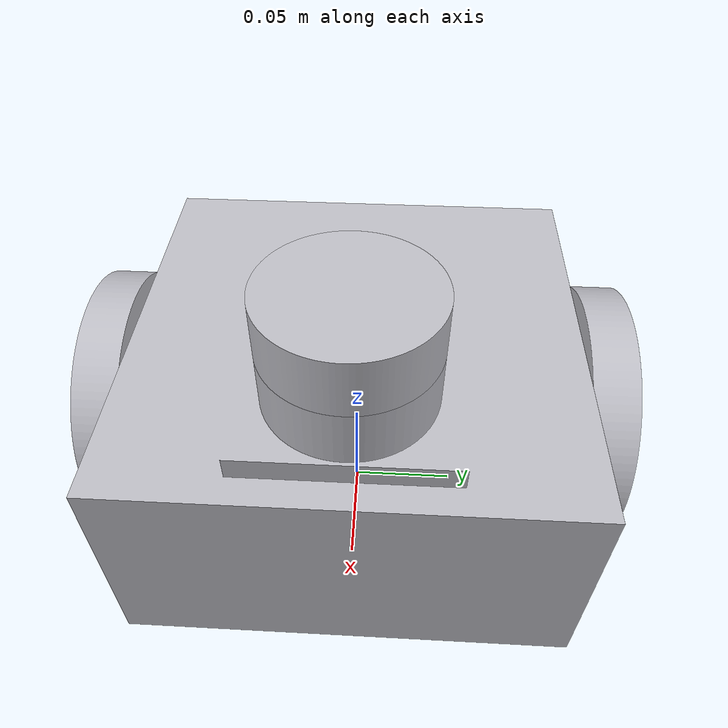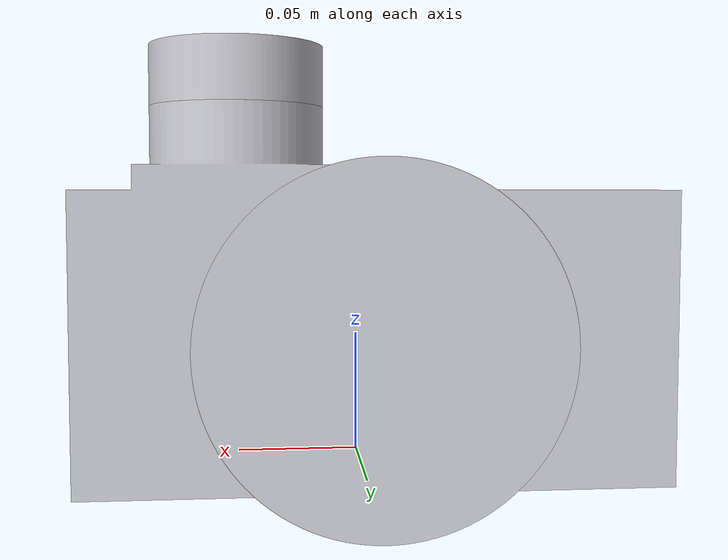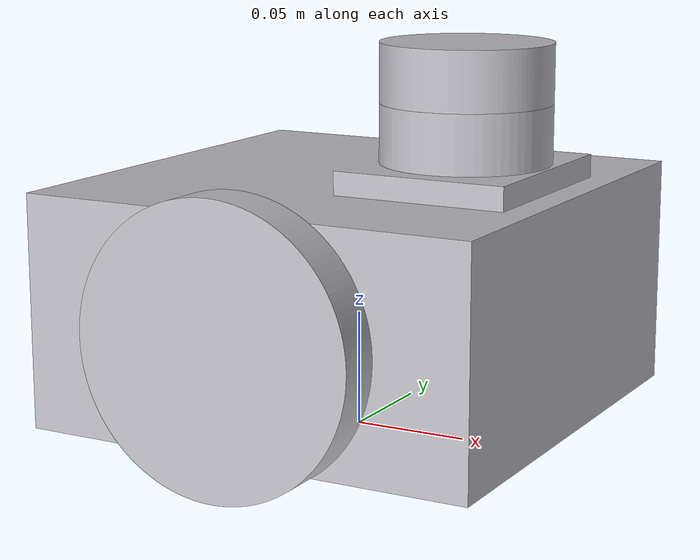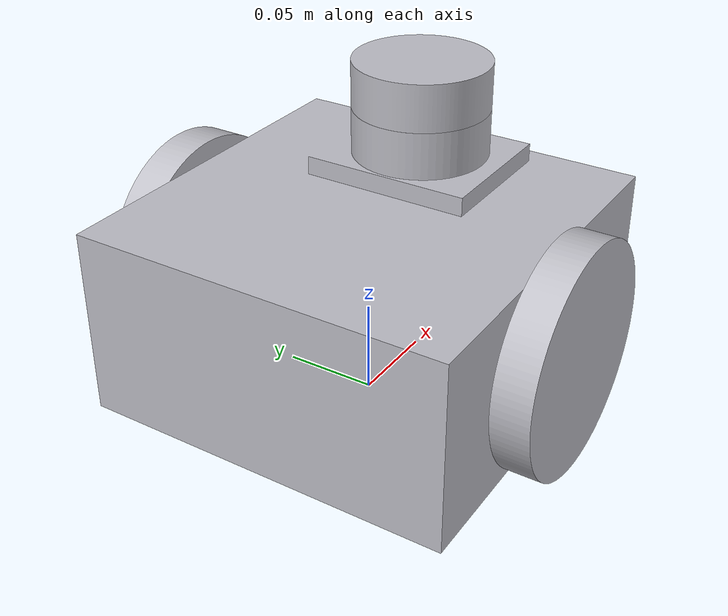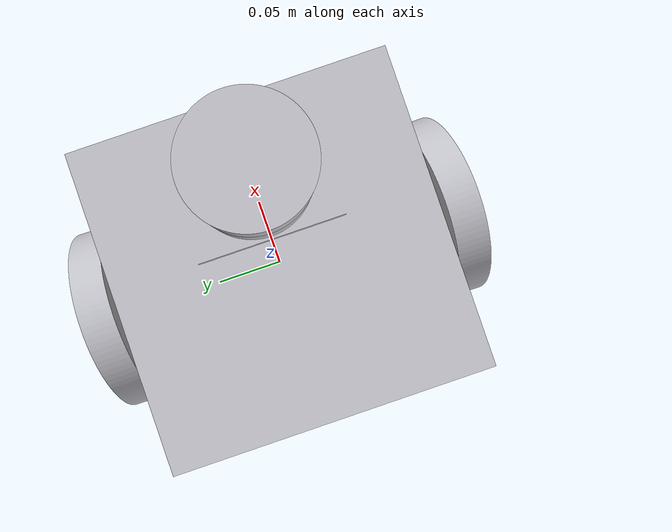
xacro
<?xml version="1.0" ?>
<robot name="bot" xmlns:xacro="http://www.ros.org/wiki/xacro">

<xacro:include filename="$(find bot_description)/urdf/materials.xacro" />
<xacro:include filename="$(find bot_description)/urdf/bot.trans" />
<xacro:include filename="$(find bot_description)/urdf/bot.gazebo" />
<link name="base_link">
  <inertial>
    <origin xyz="0.0019988554986570734 -1.3222279788666387e-08 0.06263210787557169" rpy="0 0 0"/>
    <mass value="4.421664916903425"/>
    <inertia ixx="0.018516" iyy="0.01894" izz="0.028858" ixy="-0.0" iyz="-0.0" ixz="-0.000572"/>
  </inertial>
  <visual>
    <origin xyz="0 0 0" rpy="0 0 0"/>
    <geometry>
      <mesh filename="file://$(find bot_description)/meshes/base_link.stl" scale="0.001 0.001 0.001"/>
    </geometry>
    <material name="silver"/>
  </visual>
  <collision>
    <origin xyz="0 0 0" rpy="0 0 0"/>
    <geometry>
      <mesh filename="file://$(find bot_description)/meshes/base_link.stl" scale="0.001 0.001 0.001"/>
    </geometry>
  </collision>
</link>

<link name="right_wheel_1">
  <inertial>
    <origin xyz="2.2204460492503132e-17 -0.010000000000000009 1.3877787807814457e-17" rpy="0 0 0"/>
    <mass value="0.21036104408437248"/>
    <inertia ixx="0.000196" iyy="0.000379" izz="0.000196" ixy="-0.0" iyz="-0.0" ixz="0.0"/>
  </inertial>
  <visual>
    <origin xyz="-0.0 0.1 -0.06" rpy="0 0 0"/>
    <geometry>
      <mesh filename="file://$(find bot_description)/meshes/right_wheel_1.stl" scale="0.001 0.001 0.001"/>
    </geometry>
    <material name="silver"/>
  </visual>
  <collision>
    <origin xyz="-0.0 0.1 -0.06" rpy="0 0 0"/>
    <geometry>
      <mesh filename="file://$(find bot_description)/meshes/right_wheel_1.stl" scale="0.001 0.001 0.001"/>
    </geometry>
  </collision>
</link>

<link name="left_wheel_1">
  <inertial>
    <origin xyz="2.2204460492503132e-17 0.010000000000000009 1.3877787807814457e-17" rpy="0 0 0"/>
    <mass value="0.21036104408437248"/>
    <inertia ixx="0.000196" iyy="0.000379" izz="0.000196" ixy="0.0" iyz="0.0" ixz="0.0"/>
  </inertial>
  <visual>
    <origin xyz="-0.0 -0.1 -0.06" rpy="0 0 0"/>
    <geometry>
      <mesh filename="file://$(find bot_description)/meshes/left_wheel_1.stl" scale="0.001 0.001 0.001"/>
    </geometry>
    <material name="silver"/>
  </visual>
  <collision>
    <origin xyz="-0.0 -0.1 -0.06" rpy="0 0 0"/>
    <geometry>
      <mesh filename="file://$(find bot_description)/meshes/left_wheel_1.stl" scale="0.001 0.001 0.001"/>
    </geometry>
  </collision>
</link>

<link name="lidar_1">
  <inertial>
    <origin xyz="6.938893903907228e-18 -5.5845130209510275e-18 0.012499999999999983" rpy="0 0 0"/>
    <mass value="0.10789485809488791"/>
    <inertia ixx="4.1e-05" iyy="4.1e-05" izz="7e-05" ixy="-0.0" iyz="0.0" ixz="0.0"/>
  </inertial>
  <visual>
    <origin xyz="-0.05 -0.0 -0.145" rpy="0 0 0"/>
    <geometry>
      <mesh filename="file://$(find bot_description)/meshes/lidar_1.stl" scale="0.001 0.001 0.001"/>
    </geometry>
    <material name="silver"/>
  </visual>
  <collision>
    <origin xyz="-0.05 -0.0 -0.145" rpy="0 0 0"/>
    <geometry>
      <mesh filename="file://$(find bot_description)/meshes/lidar_1.stl" scale="0.001 0.001 0.001"/>
    </geometry>
  </collision>
</link>

<joint name="Revolute1" type="continuous">
  <origin xyz="0.0 -0.1 0.06" rpy="0 0 0"/>
  <parent link="base_link"/>
  <child link="right_wheel_1"/>
  <axis xyz="0.0 1.0 0.0"/>
</joint>

<joint name="Revolute2" type="continuous">
  <origin xyz="0.0 0.1 0.06" rpy="0 0 0"/>
  <parent link="base_link"/>
  <child link="left_wheel_1"/>
  <axis xyz="0.0 1.0 0.0"/>
</joint>

<joint name="Rigid 3" type="fixed">
  <origin xyz="0.05 0.0 0.145" rpy="0 0 0"/>
  <parent link="base_link"/>
  <child link="lidar_1"/>
</joint>

</robot>

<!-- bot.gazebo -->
<robot name="bot" xmlns:xacro="http://www.ros.org/wiki/xacro" >

<xacro:property name="body_color" value="Gazebo/Silver" />

<gazebo>
  <plugin name="control" filename="libgazebo_ros_control.so"/>
</gazebo>
<gazebo reference="base_link">
  <material>${body_color}</material>
  <mu1>0.1</mu1>
  <mu2>0.1</mu2>
  <self_collide>true</self_collide>
  <gravity>true</gravity>
</gazebo>

<gazebo reference="right_wheel_1">
  <material>${body_color}</material>
  <mu1>1500</mu1>
  <mu2>1500</mu2>
  <self_collide>true</self_collide>
</gazebo>

<gazebo reference="left_wheel_1">
  <material>${body_color}</material>
  <mu1>1500</mu1>
  <mu2>1500</mu2>
  <self_collide>true</self_collide>
</gazebo>

<gazebo reference="lidar_1">
  <material>${body_color}</material>
  <mu1>0.2</mu1>
  <mu2>0.2</mu2>
  <self_collide>true</self_collide>
</gazebo>
     <!-- ==============================joint state publisher=========================== -->

<gazebo>
      <plugin name="differential_drive_controller" filename="libgazebo_ros_diff_drive.so">

        <ros>
        </ros>

        <update_rate>100</update_rate>

        <!-- wheels -->
        <left_joint>Revolute2</left_joint>
        <right_joint>Revolute1</right_joint>

        <!-- kinematics -->
        <wheel_separation>0.20</wheel_separation>
        <wheel_diameter>0.1</wheel_diameter>

        <!-- limits -->
        <max_wheel_torque>5000</max_wheel_torque>
        <max_wheel_acceleration>1.0</max_wheel_acceleration>

        <command_topic>cmd_vel</command_topic>

        <!-- output -->
        <publish_odom>true</publish_odom>
        <publish_odom_tf>true</publish_odom_tf>
        <publish_wheel_tf>false</publish_wheel_tf>

        <odometry_topic>odom</odometry_topic>
        <odometry_frame>odom</odometry_frame>
        <robot_base_frame>base_link</robot_base_frame>

      </plugin>
</gazebo>
<!--========================================== LIDAR PLUGIN - GAZEBO ==========================================-->
<gazebo reference="lidar_1">
  <sensor type="ray" name="laser">
    <ray>
      <scan>
        <horizontal>
          <samples>720</samples>
          <resolution>1</resolution>
          <min_angle>-3.14159</min_angle>  <!-- -π for 360° -->
          <max_angle>3.14159</max_angle>
        </horizontal>
      </scan>
      <range>
        <min>0.10</min>
        <max>8.0</max>
        <resolution>0.01</resolution>
      </range>
      <noise>
        <type>gaussian</type>
        <mean>0.0</mean>
        <stddev>0.01</stddev>
      </noise>
    </ray>
    <always_on>1</always_on>
    <visualize>true</visualize>
    <update_rate>30</update_rate>

    <plugin name="laser" filename="libgazebo_ros_ray_sensor.so">
      <ros>
        <remapping>~/scan:=scan</remapping>  Ensure correct remapping
      </ros>
      <output_type>sensor_msgs/LaserScan</output_type>
      <frame_name>lidar_1</frame_name>
    </plugin>
  </sensor>
</gazebo>

</robot>
